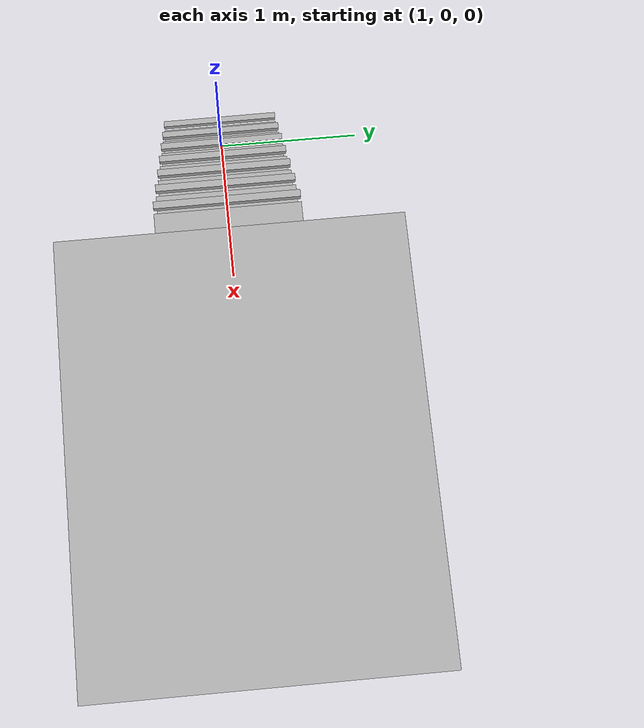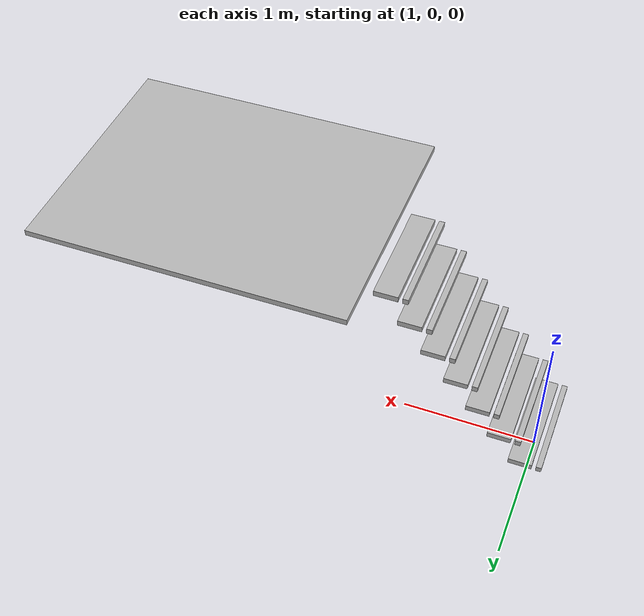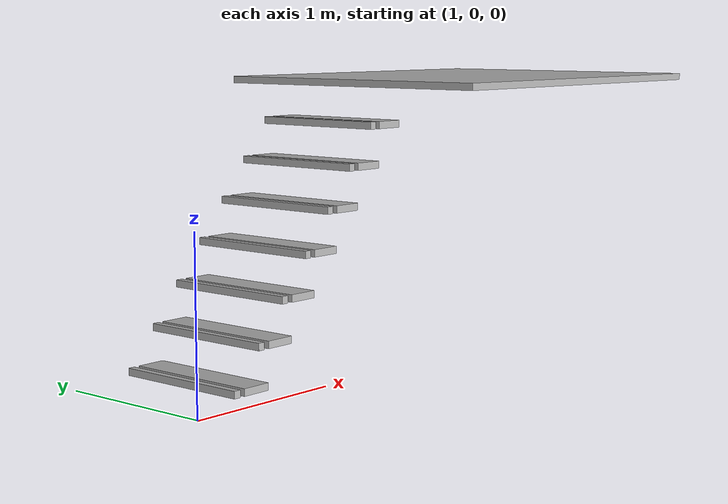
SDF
<?xml version='1.0'?>
<sdf version='1.4'>
  <model name="stairs">
    <static>true</static>
    <link name='stairs1_front'>
      <pose>0.9 0 0.225 0 0 0</pose>
      <collision name='collision'>
        <geometry>
          <box>
            <size>0.04 0.8 0.04</size>
          </box>
        </geometry>
      </collision>
      <visual name='visual'>
        <geometry>
          <box>
            <size>0.04 0.8 0.04</size>
          </box>
        </geometry>
      </visual>
    </link>
    <link name='stairs1_back'>
      <pose>1.035 0 0.225 0 0 0</pose>
      <collision name='collision'>
        <geometry>
          <box>
            <size>0.17 0.8 0.04</size>
          </box>
        </geometry>
      </collision>
      <visual name='visual'>
        <geometry>
          <box>
            <size>0.17 0.8 0.04</size>
          </box>
        </geometry>
      </visual>
    </link>

    <link name='stairs2_front'>
      <pose>1.075 0 0.44 0 0 0</pose>
      <collision name='collision'>
        <geometry>
          <box>
            <size>0.04 0.8 0.04</size>
          </box>
        </geometry>
      </collision>
      <visual name='visual'>
        <geometry>
          <box>
            <size>0.04 0.8 0.04</size>
          </box>
        </geometry>
      </visual>
    </link>
    <link name='stairs2_back'>
      <pose>1.21 0 0.44 0 0 0</pose>
      <collision name='collision'>
        <geometry>
          <box>
            <size>0.17 0.8 0.04</size>
          </box>
        </geometry>
      </collision>
      <visual name='visual'>
        <geometry>
          <box>
            <size>0.17 0.8 0.04</size>
          </box>
        </geometry>
      </visual>
    </link>

    <link name='stairs3_front'>
      <pose>1.25 0 0.655 0 0 0</pose>
      <collision name='collision'>
        <geometry>
          <box>
            <size>0.04 0.8 0.04</size>
          </box>
        </geometry>
      </collision>
      <visual name='visual'>
        <geometry>
          <box>
            <size>0.04 0.8 0.04</size>
          </box>
        </geometry>
      </visual>
    </link>
    <link name='stairs3_back'>
      <pose>1.385 0 0.655 0 0 0</pose>
      <collision name='collision'>
        <geometry>
          <box>
            <size>0.17 0.8 0.04</size>
          </box>
        </geometry>
      </collision>
      <visual name='visual'>
        <geometry>
          <box>
            <size>0.17 0.8 0.04</size>
          </box>
        </geometry>
      </visual>
    </link>

    <link name='stairs4_front'>
      <pose>1.425 0 0.87 0 0 0</pose>
      <collision name='collision'>
        <geometry>
          <box>
            <size>0.04 0.8 0.04</size>
          </box>
        </geometry>
      </collision>
      <visual name='visual'>
        <geometry>
          <box>
            <size>0.04 0.8 0.04</size>
          </box>
        </geometry>
      </visual>
    </link>
    <link name='stairs4_back'>
      <pose>1.56 0 0.87 0 0 0</pose>
      <collision name='collision'>
        <geometry>
          <box>
            <size>0.17 0.8 0.04</size>
          </box>
        </geometry>
      </collision>
      <visual name='visual'>
        <geometry>
          <box>
            <size>0.17 0.8 0.04</size>
          </box>
        </geometry>
      </visual>
    </link>

    <link name='stairs5_front'>
      <pose>1.6 0 1.085 0 0 0</pose>
      <collision name='collision'>
        <geometry>
          <box>
            <size>0.04 0.8 0.04</size>
          </box>
        </geometry>
      </collision>
      <visual name='visual'>
        <geometry>
          <box>
            <size>0.04 0.8 0.04</size>
          </box>
        </geometry>
      </visual>
    </link>
    <link name='stairs5_back'>
      <pose>1.735 0 1.085 0 0 0</pose>
      <collision name='collision'>
        <geometry>
          <box>
            <size>0.17 0.8 0.04</size>
          </box>
        </geometry>
      </collision>
      <visual name='visual'>
        <geometry>
          <box>
            <size>0.17 0.8 0.04</size>
          </box>
        </geometry>
      </visual>
    </link>

    <link name='stairs6_front'>
      <pose>1.775 0 1.3 0 0 0</pose>
      <collision name='collision'>
        <geometry>
          <box>
            <size>0.04 0.8 0.04</size>
          </box>
        </geometry>
      </collision>
      <visual name='visual'>
        <geometry>
          <box>
            <size>0.04 0.8 0.04</size>
          </box>
        </geometry>
      </visual>
    </link>
    <link name='stairs6_back'>
      <pose>1.91 0 1.3 0 0 0</pose>
      <collision name='collision'>
        <geometry>
          <box>
            <size>0.17 0.8 0.04</size>
          </box>
        </geometry>
      </collision>
      <visual name='visual'>
        <geometry>
          <box>
            <size>0.17 0.8 0.04</size>
          </box>
        </geometry>
      </visual>
    </link>

    <link name='stairs7_front'>
      <pose>1.95 0 1.515 0 0 0</pose>
      <collision name='collision'>
        <geometry>
          <box>
            <size>0.04 0.8 0.04</size>
          </box>
        </geometry>
      </collision>
      <visual name='visual'>
        <geometry>
          <box>
            <size>0.04 0.8 0.04</size>
          </box>
        </geometry>
      </visual>
    </link>
    <link name='stairs7_back'>
      <pose>2.085 0 1.515 0 0 0</pose>
      <collision name='collision'>
        <geometry>
          <box>
            <size>0.17 0.8 0.04</size>
          </box>
        </geometry>
      </collision>
      <visual name='visual'>
        <geometry>
          <box>
            <size>0.17 0.8 0.04</size>
          </box>
        </geometry>
      </visual>
    </link>

    <link name='top'>
      <pose>3.295 0 1.73 0 0 0</pose>
      <collision name='collision'>
        <geometry>
          <box>
            <size>2.24 1.8 0.04</size>
          </box>
        </geometry>
      </collision>
      <visual name='visual'>
        <geometry>
          <box>
            <size>2.24 1.8 0.04</size>
          </box>
        </geometry>
      </visual>
    </link>
  </model>
</sdf>
